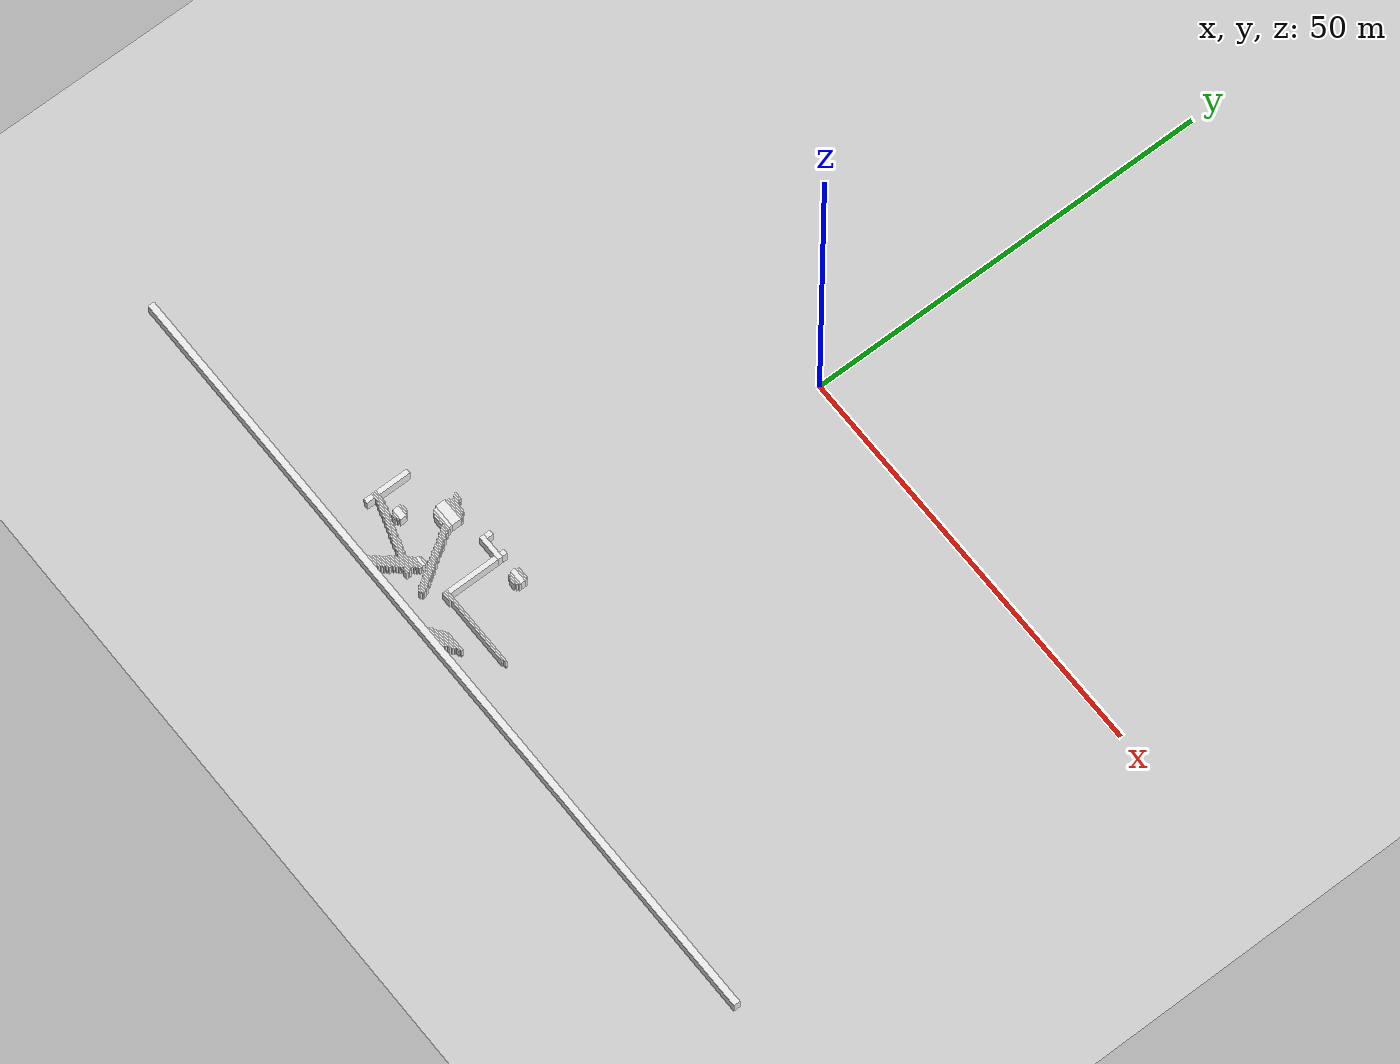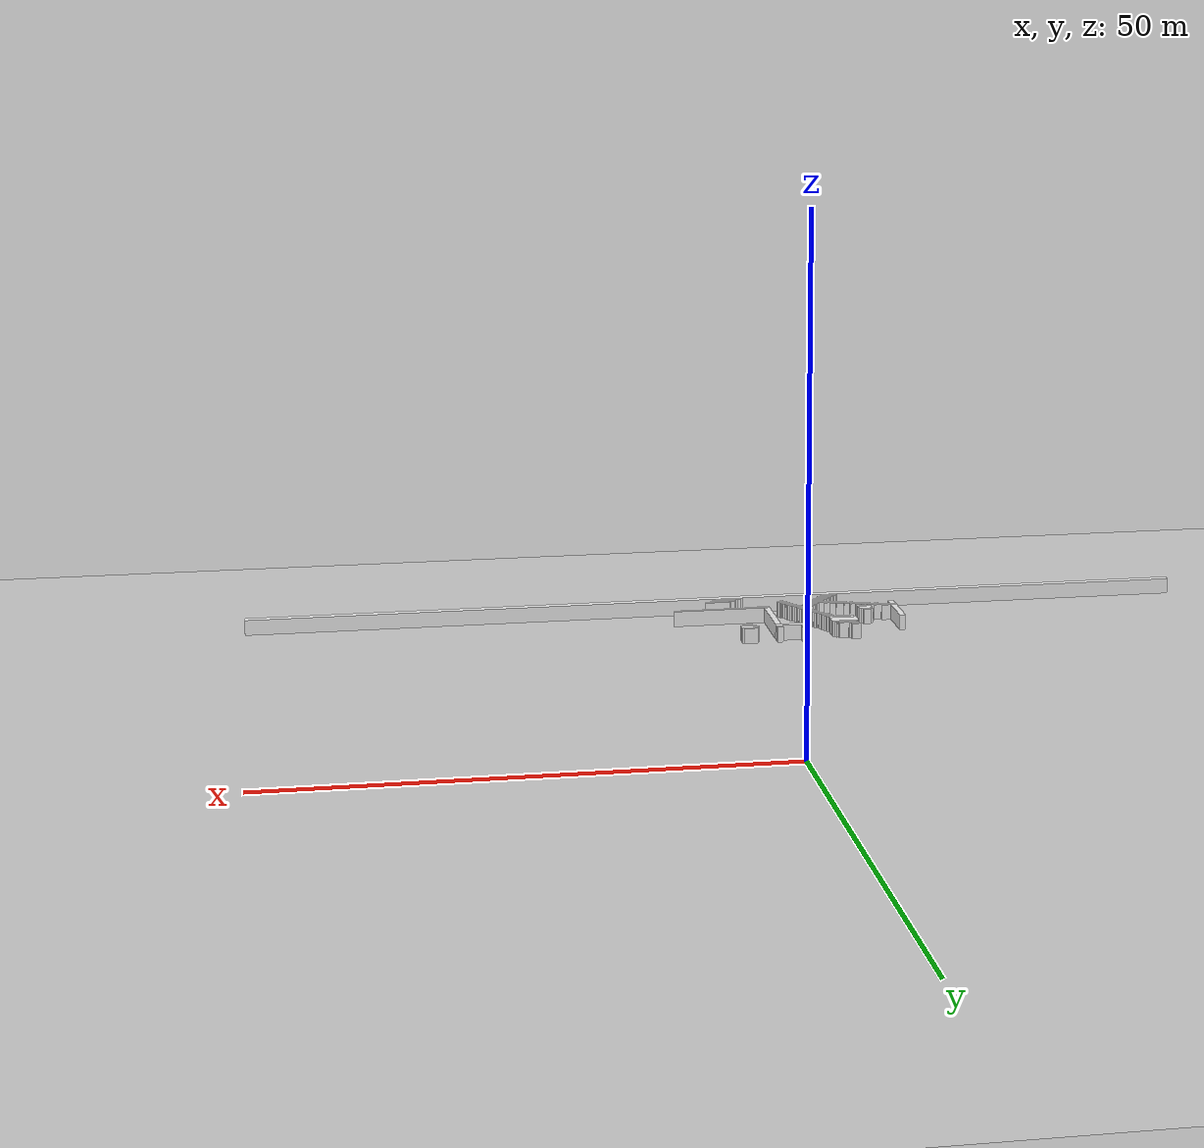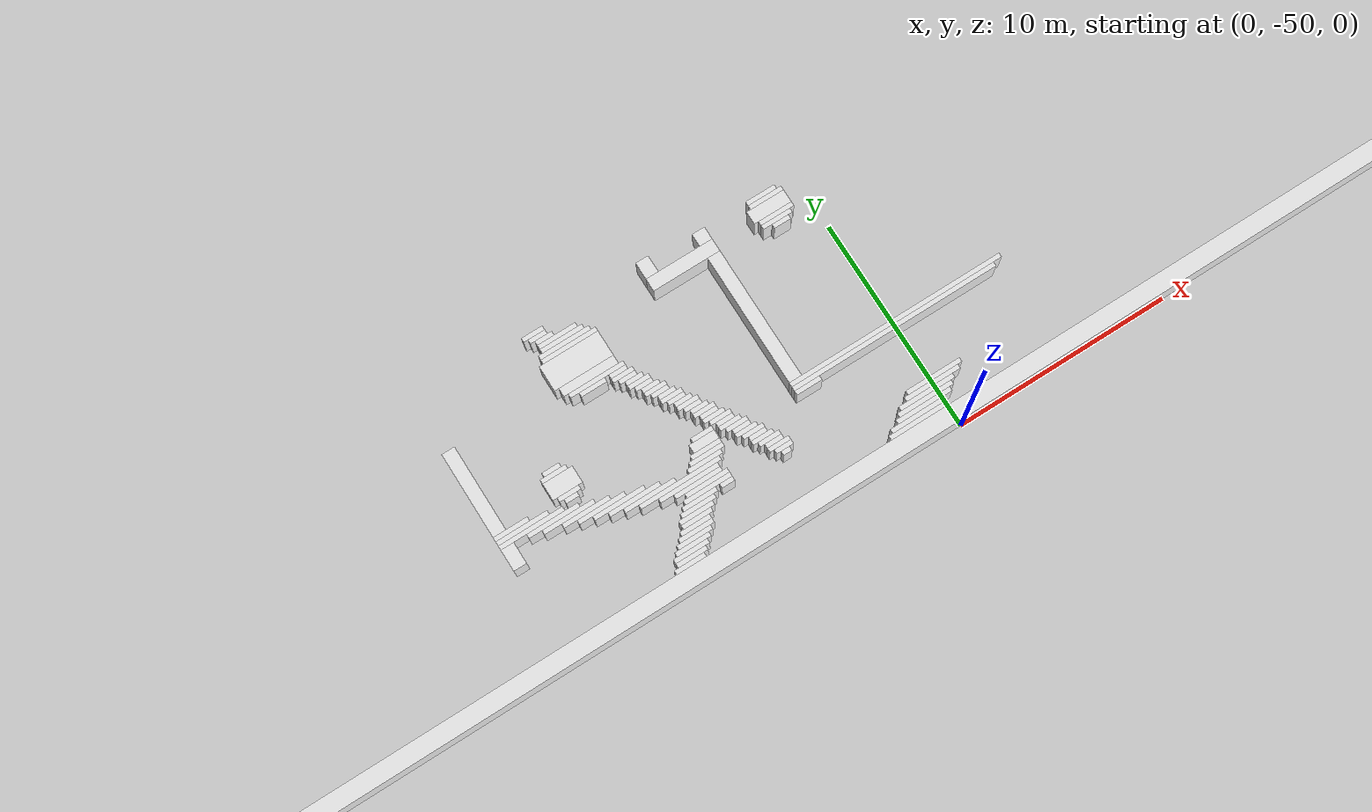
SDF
<sdf version="1.7">
 <world name="default">
  <model name="ground_plane">
   <static>1</static>
   <link name="link">
    <collision name="collision">
     <geometry><plane><normal>0 0 1</normal><size>120 120</size></plane></geometry>
    </collision>
    <visual name="visual">
     <geometry><plane><normal>0 0 1</normal><size>120 120</size></plane></geometry>
     <material>
      <script><uri>file://media/materials/scripts/gazebo.material</uri><name>Gazebo/Grey</name></script>
     </material>
    </visual>
   </link>
  </model>
  <model name="random_complex_02_model">
   <static>1</static>
   <link name="obs_3245">
    <pose>-12.9000 -37.7000 0.8000 0 0 0</pose>
    <collision name="obs_3245_col"><geometry><box><size>1.0000 0.2000 1.6000</size></box></geometry></collision>
    <visual name="obs_3245_vis">
     <geometry><box><size>1.0000 0.2000 1.6000</size></box></geometry>
     <material>
      <script><uri>file://media/materials/scripts/gazebo.material</uri><name>Gazebo/White</name></script>
     </material>
    </visual>
   </link>
   <link name="obs_3246">
    <pose>-1.9000 -37.7000 0.8000 0 0 0</pose>
    <collision name="obs_3246_col"><geometry><box><size>1.4000 0.2000 1.6000</size></box></geometry></collision>
    <visual name="obs_3246_vis">
     <geometry><box><size>1.4000 0.2000 1.6000</size></box></geometry>
     <material>
      <script><uri>file://media/materials/scripts/gazebo.material</uri><name>Gazebo/White</name></script>
     </material>
    </visual>
   </link>
   <link name="obs_3253">
    <pose>-12.8000 -37.9000 0.8000 0 0 0</pose>
    <collision name="obs_3253_col"><geometry><box><size>0.8000 0.2000 1.6000</size></box></geometry></collision>
    <visual name="obs_3253_vis">
     <geometry><box><size>0.8000 0.2000 1.6000</size></box></geometry>
     <material>
      <script><uri>file://media/materials/scripts/gazebo.material</uri><name>Gazebo/White</name></script>
     </material>
    </visual>
   </link>
   <link name="obs_3254">
    <pose>-1.8000 -37.9000 0.8000 0 0 0</pose>
    <collision name="obs_3254_col"><geometry><box><size>1.6000 0.2000 1.6000</size></box></geometry></collision>
    <visual name="obs_3254_vis">
     <geometry><box><size>1.6000 0.2000 1.6000</size></box></geometry>
     <material>
      <script><uri>file://media/materials/scripts/gazebo.material</uri><name>Gazebo/White</name></script>
     </material>
    </visual>
   </link>
   <link name="obs_3257">
    <pose>-7.5000 -37.8000 0.8000 0 0 0</pose>
    <collision name="obs_3257_col"><geometry><box><size>0.6000 0.8000 1.6000</size></box></geometry></collision>
    <visual name="obs_3257_vis">
     <geometry><box><size>0.6000 0.8000 1.6000</size></box></geometry>
     <material>
      <script><uri>file://media/materials/scripts/gazebo.material</uri><name>Gazebo/White</name></script>
     </material>
    </visual>
   </link>
   <link name="obs_3258">
    <pose>-4.9000 -37.9000 0.8000 0 0 0</pose>
    <collision name="obs_3258_col"><geometry><box><size>0.6000 0.6000 1.6000</size></box></geometry></collision>
    <visual name="obs_3258_vis">
     <geometry><box><size>0.6000 0.6000 1.6000</size></box></geometry>
     <material>
      <script><uri>file://media/materials/scripts/gazebo.material</uri><name>Gazebo/White</name></script>
     </material>
    </visual>
   </link>
   <link name="obs_3260">
    <pose>-12.6000 -38.1000 0.8000 0 0 0</pose>
    <collision name="obs_3260_col"><geometry><box><size>0.8000 0.2000 1.6000</size></box></geometry></collision>
    <visual name="obs_3260_vis">
     <geometry><box><size>0.8000 0.2000 1.6000</size></box></geometry>
     <material>
      <script><uri>file://media/materials/scripts/gazebo.material</uri><name>Gazebo/White</name></script>
     </material>
    </visual>
   </link>
   <link name="obs_3264">
    <pose>-12.1000 -38.3000 0.8000 0 0 0</pose>
    <collision name="obs_3264_col"><geometry><box><size>1.8000 0.2000 1.6000</size></box></geometry></collision>
    <visual name="obs_3264_vis">
     <geometry><box><size>1.8000 0.2000 1.6000</size></box></geometry>
     <material>
      <script><uri>file://media/materials/scripts/gazebo.material</uri><name>Gazebo/White</name></script>
     </material>
    </visual>
   </link>
   <link name="obs_3268">
    <pose>-1.9000 -38.3000 0.8000 0 0 0</pose>
    <collision name="obs_3268_col"><geometry><box><size>1.8000 0.6000 1.6000</size></box></geometry></collision>
    <visual name="obs_3268_vis">
     <geometry><box><size>1.8000 0.6000 1.6000</size></box></geometry>
     <material>
      <script><uri>file://media/materials/scripts/gazebo.material</uri><name>Gazebo/White</name></script>
     </material>
    </visual>
   </link>
   <link name="obs_3269">
    <pose>-12.0000 -38.5000 0.8000 0 0 0</pose>
    <collision name="obs_3269_col"><geometry><box><size>2.0000 0.2000 1.6000</size></box></geometry></collision>
    <visual name="obs_3269_vis">
     <geometry><box><size>2.0000 0.2000 1.6000</size></box></geometry>
     <material>
      <script><uri>file://media/materials/scripts/gazebo.material</uri><name>Gazebo/White</name></script>
     </material>
    </visual>
   </link>
   <link name="obs_3274">
    <pose>-6.2000 -38.5000 0.8000 0 0 0</pose>
    <collision name="obs_3274_col"><geometry><box><size>3.2000 0.6000 1.6000</size></box></geometry></collision>
    <visual name="obs_3274_vis">
     <geometry><box><size>3.2000 0.6000 1.6000</size></box></geometry>
     <material>
      <script><uri>file://media/materials/scripts/gazebo.material</uri><name>Gazebo/White</name></script>
     </material>
    </visual>
   </link>
   <link name="obs_3277">
    <pose>-12.0000 -38.7000 0.8000 0 0 0</pose>
    <collision name="obs_3277_col"><geometry><box><size>2.4000 0.2000 1.6000</size></box></geometry></collision>
    <visual name="obs_3277_vis">
     <geometry><box><size>2.4000 0.2000 1.6000</size></box></geometry>
     <material>
      <script><uri>file://media/materials/scripts/gazebo.material</uri><name>Gazebo/White</name></script>
     </material>
    </visual>
   </link>
   <link name="obs_3278">
    <pose>-1.8000 -38.7000 0.8000 0 0 0</pose>
    <collision name="obs_3278_col"><geometry><box><size>1.6000 0.2000 1.6000</size></box></geometry></collision>
    <visual name="obs_3278_vis">
     <geometry><box><size>1.6000 0.2000 1.6000</size></box></geometry>
     <material>
      <script><uri>file://media/materials/scripts/gazebo.material</uri><name>Gazebo/White</name></script>
     </material>
    </visual>
   </link>
   <link name="obs_3284">
    <pose>-11.9000 -38.9000 0.8000 0 0 0</pose>
    <collision name="obs_3284_col"><geometry><box><size>2.6000 0.2000 1.6000</size></box></geometry></collision>
    <visual name="obs_3284_vis">
     <geometry><box><size>2.6000 0.2000 1.6000</size></box></geometry>
     <material>
      <script><uri>file://media/materials/scripts/gazebo.material</uri><name>Gazebo/White</name></script>
     </material>
    </visual>
   </link>
   <link name="obs_3285">
    <pose>-1.9000 -38.9000 0.8000 0 0 0</pose>
    <collision name="obs_3285_col"><geometry><box><size>1.4000 0.2000 1.6000</size></box></geometry></collision>
    <visual name="obs_3285_vis">
     <geometry><box><size>1.4000 0.2000 1.6000</size></box></geometry>
     <material>
      <script><uri>file://media/materials/scripts/gazebo.material</uri><name>Gazebo/White</name></script>
     </material>
    </visual>
   </link>
   <link name="obs_3291">
    <pose>-1.8000 -39.1000 0.8000 0 0 0</pose>
    <collision name="obs_3291_col"><geometry><box><size>0.8000 0.2000 1.6000</size></box></geometry></collision>
    <visual name="obs_3291_vis">
     <geometry><box><size>0.8000 0.2000 1.6000</size></box></geometry>
     <material>
      <script><uri>file://media/materials/scripts/gazebo.material</uri><name>Gazebo/White</name></script>
     </material>
    </visual>
   </link>
   <link name="obs_3311">
    <pose>-12.0000 -39.6000 0.8000 0 0 0</pose>
    <collision name="obs_3311_col"><geometry><box><size>2.8000 1.2000 1.6000</size></box></geometry></collision>
    <visual name="obs_3311_vis">
     <geometry><box><size>2.8000 1.2000 1.6000</size></box></geometry>
     <material>
      <script><uri>file://media/materials/scripts/gazebo.material</uri><name>Gazebo/White</name></script>
     </material>
    </visual>
   </link>
   <link name="obs_3323">
    <pose>-11.9000 -40.4000 0.8000 0 0 0</pose>
    <collision name="obs_3323_col"><geometry><box><size>2.6000 0.4000 1.6000</size></box></geometry></collision>
    <visual name="obs_3323_vis">
     <geometry><box><size>2.6000 0.4000 1.6000</size></box></geometry>
     <material>
      <script><uri>file://media/materials/scripts/gazebo.material</uri><name>Gazebo/White</name></script>
     </material>
    </visual>
   </link>
   <link name="obs_3331">
    <pose>-11.7000 -40.7000 0.8000 0 0 0</pose>
    <collision name="obs_3331_col"><geometry><box><size>2.6000 0.2000 1.6000</size></box></geometry></collision>
    <visual name="obs_3331_vis">
     <geometry><box><size>2.6000 0.2000 1.6000</size></box></geometry>
     <material>
      <script><uri>file://media/materials/scripts/gazebo.material</uri><name>Gazebo/White</name></script>
     </material>
    </visual>
   </link>
   <link name="obs_3336">
    <pose>-12.0000 -40.9000 0.8000 0 0 0</pose>
    <collision name="obs_3336_col"><geometry><box><size>1.2000 0.2000 1.6000</size></box></geometry></collision>
    <visual name="obs_3336_vis">
     <geometry><box><size>1.2000 0.2000 1.6000</size></box></geometry>
     <material>
      <script><uri>file://media/materials/scripts/gazebo.material</uri><name>Gazebo/White</name></script>
     </material>
    </visual>
   </link>
   <link name="obs_3337">
    <pose>-10.8000 -40.9000 0.8000 0 0 0</pose>
    <collision name="obs_3337_col"><geometry><box><size>0.8000 0.2000 1.6000</size></box></geometry></collision>
    <visual name="obs_3337_vis">
     <geometry><box><size>0.8000 0.2000 1.6000</size></box></geometry>
     <material>
      <script><uri>file://media/materials/scripts/gazebo.material</uri><name>Gazebo/White</name></script>
     </material>
    </visual>
   </link>
   <link name="obs_3346">
    <pose>-10.7000 -41.1000 0.8000 0 0 0</pose>
    <collision name="obs_3346_col"><geometry><box><size>1.0000 0.2000 1.6000</size></box></geometry></collision>
    <visual name="obs_3346_vis">
     <geometry><box><size>1.0000 0.2000 1.6000</size></box></geometry>
     <material>
      <script><uri>file://media/materials/scripts/gazebo.material</uri><name>Gazebo/White</name></script>
     </material>
    </visual>
   </link>
   <link name="obs_3354">
    <pose>-10.6000 -41.3000 0.8000 0 0 0</pose>
    <collision name="obs_3354_col"><geometry><box><size>0.8000 0.2000 1.6000</size></box></geometry></collision>
    <visual name="obs_3354_vis">
     <geometry><box><size>0.8000 0.2000 1.6000</size></box></geometry>
     <material>
      <script><uri>file://media/materials/scripts/gazebo.material</uri><name>Gazebo/White</name></script>
     </material>
    </visual>
   </link>
   <link name="obs_3361">
    <pose>-10.4000 -41.5000 0.8000 0 0 0</pose>
    <collision name="obs_3361_col"><geometry><box><size>0.8000 0.2000 1.6000</size></box></geometry></collision>
    <visual name="obs_3361_vis">
     <geometry><box><size>0.8000 0.2000 1.6000</size></box></geometry>
     <material>
      <script><uri>file://media/materials/scripts/gazebo.material</uri><name>Gazebo/White</name></script>
     </material>
    </visual>
   </link>
   <link name="obs_3371">
    <pose>-10.3000 -41.7000 0.8000 0 0 0</pose>
    <collision name="obs_3371_col"><geometry><box><size>1.0000 0.2000 1.6000</size></box></geometry></collision>
    <visual name="obs_3371_vis">
     <geometry><box><size>1.0000 0.2000 1.6000</size></box></geometry>
     <material>
      <script><uri>file://media/materials/scripts/gazebo.material</uri><name>Gazebo/White</name></script>
     </material>
    </visual>
   </link>
   <link name="obs_3380">
    <pose>-10.2000 -41.9000 0.8000 0 0 0</pose>
    <collision name="obs_3380_col"><geometry><box><size>0.8000 0.2000 1.6000</size></box></geometry></collision>
    <visual name="obs_3380_vis">
     <geometry><box><size>0.8000 0.2000 1.6000</size></box></geometry>
     <material>
      <script><uri>file://media/materials/scripts/gazebo.material</uri><name>Gazebo/White</name></script>
     </material>
    </visual>
   </link>
   <link name="obs_3390">
    <pose>-10.0000 -42.1000 0.8000 0 0 0</pose>
    <collision name="obs_3390_col"><geometry><box><size>0.8000 0.2000 1.6000</size></box></geometry></collision>
    <visual name="obs_3390_vis">
     <geometry><box><size>0.8000 0.2000 1.6000</size></box></geometry>
     <material>
      <script><uri>file://media/materials/scripts/gazebo.material</uri><name>Gazebo/White</name></script>
     </material>
    </visual>
   </link>
   <link name="obs_3397">
    <pose>-9.9000 -42.3000 0.8000 0 0 0</pose>
    <collision name="obs_3397_col"><geometry><box><size>1.0000 0.2000 1.6000</size></box></geometry></collision>
    <visual name="obs_3397_vis">
     <geometry><box><size>1.0000 0.2000 1.6000</size></box></geometry>
     <material>
      <script><uri>file://media/materials/scripts/gazebo.material</uri><name>Gazebo/White</name></script>
     </material>
    </visual>
   </link>
   <link name="obs_3404">
    <pose>-9.8000 -42.5000 0.8000 0 0 0</pose>
    <collision name="obs_3404_col"><geometry><box><size>0.8000 0.2000 1.6000</size></box></geometry></collision>
    <visual name="obs_3404_vis">
     <geometry><box><size>0.8000 0.2000 1.6000</size></box></geometry>
     <material>
      <script><uri>file://media/materials/scripts/gazebo.material</uri><name>Gazebo/White</name></script>
     </material>
    </visual>
   </link>
   <link name="obs_3408">
    <pose>-9.6000 -42.7000 0.8000 0 0 0</pose>
    <collision name="obs_3408_col"><geometry><box><size>0.8000 0.2000 1.6000</size></box></geometry></collision>
    <visual name="obs_3408_vis">
     <geometry><box><size>0.8000 0.2000 1.6000</size></box></geometry>
     <material>
      <script><uri>file://media/materials/scripts/gazebo.material</uri><name>Gazebo/White</name></script>
     </material>
    </visual>
   </link>
   <link name="obs_3416">
    <pose>-15.2000 -42.9000 0.8000 0 0 0</pose>
    <collision name="obs_3416_col"><geometry><box><size>0.8000 0.2000 1.6000</size></box></geometry></collision>
    <visual name="obs_3416_vis">
     <geometry><box><size>0.8000 0.2000 1.6000</size></box></geometry>
     <material>
      <script><uri>file://media/materials/scripts/gazebo.material</uri><name>Gazebo/White</name></script>
     </material>
    </visual>
   </link>
   <link name="obs_3417">
    <pose>-9.5000 -42.9000 0.8000 0 0 0</pose>
    <collision name="obs_3417_col"><geometry><box><size>1.0000 0.2000 1.6000</size></box></geometry></collision>
    <visual name="obs_3417_vis">
     <geometry><box><size>1.0000 0.2000 1.6000</size></box></geometry>
     <material>
      <script><uri>file://media/materials/scripts/gazebo.material</uri><name>Gazebo/White</name></script>
     </material>
    </visual>
   </link>
   <link name="obs_3423">
    <pose>-15.2000 -43.1000 0.8000 0 0 0</pose>
    <collision name="obs_3423_col"><geometry><box><size>1.2000 0.2000 1.6000</size></box></geometry></collision>
    <visual name="obs_3423_vis">
     <geometry><box><size>1.2000 0.2000 1.6000</size></box></geometry>
     <material>
      <script><uri>file://media/materials/scripts/gazebo.material</uri><name>Gazebo/White</name></script>
     </material>
    </visual>
   </link>
   <link name="obs_3424">
    <pose>-9.4000 -43.1000 0.8000 0 0 0</pose>
    <collision name="obs_3424_col"><geometry><box><size>0.8000 0.2000 1.6000</size></box></geometry></collision>
    <visual name="obs_3424_vis">
     <geometry><box><size>0.8000 0.2000 1.6000</size></box></geometry>
     <material>
      <script><uri>file://media/materials/scripts/gazebo.material</uri><name>Gazebo/White</name></script>
     </material>
    </visual>
   </link>
   <link name="obs_3432">
    <pose>-9.2000 -43.3000 0.8000 0 0 0</pose>
    <collision name="obs_3432_col"><geometry><box><size>0.8000 0.2000 1.6000</size></box></geometry></collision>
    <visual name="obs_3432_vis">
     <geometry><box><size>0.8000 0.2000 1.6000</size></box></geometry>
     <material>
      <script><uri>file://media/materials/scripts/gazebo.material</uri><name>Gazebo/White</name></script>
     </material>
    </visual>
   </link>
   <link name="obs_3437">
    <pose>-9.1000 -43.5000 0.8000 0 0 0</pose>
    <collision name="obs_3437_col"><geometry><box><size>1.0000 0.2000 1.6000</size></box></geometry></collision>
    <visual name="obs_3437_vis">
     <geometry><box><size>1.0000 0.2000 1.6000</size></box></geometry>
     <material>
      <script><uri>file://media/materials/scripts/gazebo.material</uri><name>Gazebo/White</name></script>
     </material>
    </visual>
   </link>
   <link name="obs_3443">
    <pose>-9.0000 -43.7000 0.8000 0 0 0</pose>
    <collision name="obs_3443_col"><geometry><box><size>0.8000 0.2000 1.6000</size></box></geometry></collision>
    <visual name="obs_3443_vis">
     <geometry><box><size>0.8000 0.2000 1.6000</size></box></geometry>
     <material>
      <script><uri>file://media/materials/scripts/gazebo.material</uri><name>Gazebo/White</name></script>
     </material>
    </visual>
   </link>
   <link name="obs_3448">
    <pose>-18.3000 -42.0000 0.8000 0 0 0</pose>
    <collision name="obs_3448_col"><geometry><box><size>0.6000 4.0000 1.6000</size></box></geometry></collision>
    <visual name="obs_3448_vis">
     <geometry><box><size>0.6000 4.0000 1.6000</size></box></geometry>
     <material>
      <script><uri>file://media/materials/scripts/gazebo.material</uri><name>Gazebo/White</name></script>
     </material>
    </visual>
   </link>
   <link name="obs_3451">
    <pose>-15.1000 -43.6000 0.8000 0 0 0</pose>
    <collision name="obs_3451_col"><geometry><box><size>1.4000 0.8000 1.6000</size></box></geometry></collision>
    <visual name="obs_3451_vis">
     <geometry><box><size>1.4000 0.8000 1.6000</size></box></geometry>
     <material>
      <script><uri>file://media/materials/scripts/gazebo.material</uri><name>Gazebo/White</name></script>
     </material>
    </visual>
   </link>
   <link name="obs_3454">
    <pose>-8.8000 -43.9000 0.8000 0 0 0</pose>
    <collision name="obs_3454_col"><geometry><box><size>0.8000 0.2000 1.6000</size></box></geometry></collision>
    <visual name="obs_3454_vis">
     <geometry><box><size>0.8000 0.2000 1.6000</size></box></geometry>
     <material>
      <script><uri>file://media/materials/scripts/gazebo.material</uri><name>Gazebo/White</name></script>
     </material>
    </visual>
   </link>
   <link name="obs_3462">
    <pose>-17.8000 -44.1000 0.8000 0 0 0</pose>
    <collision name="obs_3462_col"><geometry><box><size>1.6000 0.2000 1.6000</size></box></geometry></collision>
    <visual name="obs_3462_vis">
     <geometry><box><size>1.6000 0.2000 1.6000</size></box></geometry>
     <material>
      <script><uri>file://media/materials/scripts/gazebo.material</uri><name>Gazebo/White</name></script>
     </material>
    </visual>
   </link>
   <link name="obs_3463">
    <pose>-15.1000 -44.1000 0.8000 0 0 0</pose>
    <collision name="obs_3463_col"><geometry><box><size>1.0000 0.2000 1.6000</size></box></geometry></collision>
    <visual name="obs_3463_vis">
     <geometry><box><size>1.0000 0.2000 1.6000</size></box></geometry>
     <material>
      <script><uri>file://media/materials/scripts/gazebo.material</uri><name>Gazebo/White</name></script>
     </material>
    </visual>
   </link>
   <link name="obs_3464">
    <pose>-8.7000 -44.1000 0.8000 0 0 0</pose>
    <collision name="obs_3464_col"><geometry><box><size>1.0000 0.2000 1.6000</size></box></geometry></collision>
    <visual name="obs_3464_vis">
     <geometry><box><size>1.0000 0.2000 1.6000</size></box></geometry>
     <material>
      <script><uri>file://media/materials/scripts/gazebo.material</uri><name>Gazebo/White</name></script>
     </material>
    </visual>
   </link>
   <link name="obs_3472">
    <pose>-17.4000 -44.3000 0.8000 0 0 0</pose>
    <collision name="obs_3472_col"><geometry><box><size>2.4000 0.2000 1.6000</size></box></geometry></collision>
    <visual name="obs_3472_vis">
     <geometry><box><size>2.4000 0.2000 1.6000</size></box></geometry>
     <material>
      <script><uri>file://media/materials/scripts/gazebo.material</uri><name>Gazebo/White</name></script>
     </material>
    </visual>
   </link>
   <link name="obs_3473">
    <pose>-15.1000 -44.3000 0.8000 0 0 0</pose>
    <collision name="obs_3473_col"><geometry><box><size>0.6000 0.2000 1.6000</size></box></geometry></collision>
    <visual name="obs_3473_vis">
     <geometry><box><size>0.6000 0.2000 1.6000</size></box></geometry>
     <material>
      <script><uri>file://media/materials/scripts/gazebo.material</uri><name>Gazebo/White</name></script>
     </material>
    </visual>
   </link>
   <link name="obs_3474">
    <pose>-8.6000 -44.3000 0.8000 0 0 0</pose>
    <collision name="obs_3474_col"><geometry><box><size>0.8000 0.2000 1.6000</size></box></geometry></collision>
    <visual name="obs_3474_vis">
     <geometry><box><size>0.8000 0.2000 1.6000</size></box></geometry>
     <material>
      <script><uri>file://media/materials/scripts/gazebo.material</uri><name>Gazebo/White</name></script>
     </material>
    </visual>
   </link>
   <link name="obs_3479">
    <pose>-17.1000 -44.5000 0.8000 0 0 0</pose>
    <collision name="obs_3479_col"><geometry><box><size>3.0000 0.2000 1.6000</size></box></geometry></collision>
    <visual name="obs_3479_vis">
     <geometry><box><size>3.0000 0.2000 1.6000</size></box></geometry>
     <material>
      <script><uri>file://media/materials/scripts/gazebo.material</uri><name>Gazebo/White</name></script>
     </material>
    </visual>
   </link>
   <link name="obs_3480">
    <pose>-8.5000 -44.5000 0.8000 0 0 0</pose>
    <collision name="obs_3480_col"><geometry><box><size>1.0000 0.2000 1.6000</size></box></geometry></collision>
    <visual name="obs_3480_vis">
     <geometry><box><size>1.0000 0.2000 1.6000</size></box></geometry>
     <material>
      <script><uri>file://media/materials/scripts/gazebo.material</uri><name>Gazebo/White</name></script>
     </material>
    </visual>
   </link>
   <link name="obs_3486">
    <pose>-16.2000 -44.7000 0.8000 0 0 0</pose>
    <collision name="obs_3486_col"><geometry><box><size>2.4000 0.2000 1.6000</size></box></geometry></collision>
    <visual name="obs_3486_vis">
     <geometry><box><size>2.4000 0.2000 1.6000</size></box></geometry>
     <material>
      <script><uri>file://media/materials/scripts/gazebo.material</uri><name>Gazebo/White</name></script>
     </material>
    </visual>
   </link>
   <link name="obs_3487">
    <pose>-8.3000 -44.7000 0.8000 0 0 0</pose>
    <collision name="obs_3487_col"><geometry><box><size>1.0000 0.2000 1.6000</size></box></geometry></collision>
    <visual name="obs_3487_vis">
     <geometry><box><size>1.0000 0.2000 1.6000</size></box></geometry>
     <material>
      <script><uri>file://media/materials/scripts/gazebo.material</uri><name>Gazebo/White</name></script>
     </material>
    </visual>
   </link>
   <link name="obs_3490">
    <pose>-4.9000 -41.9000 0.8000 0 0 0</pose>
    <collision name="obs_3490_col"><geometry><box><size>0.6000 6.2000 1.6000</size></box></geometry></collision>
    <visual name="obs_3490_vis">
     <geometry><box><size>0.6000 6.2000 1.6000</size></box></geometry>
     <material>
      <script><uri>file://media/materials/scripts/gazebo.material</uri><name>Gazebo/White</name></script>
     </material>
    </visual>
   </link>
   <link name="obs_3495">
    <pose>-15.6000 -44.9000 0.8000 0 0 0</pose>
    <collision name="obs_3495_col"><geometry><box><size>2.4000 0.2000 1.6000</size></box></geometry></collision>
    <visual name="obs_3495_vis">
     <geometry><box><size>2.4000 0.2000 1.6000</size></box></geometry>
     <material>
      <script><uri>file://media/materials/scripts/gazebo.material</uri><name>Gazebo/White</name></script>
     </material>
    </visual>
   </link>
   <link name="obs_3496">
    <pose>-9.3000 -44.9000 0.8000 0 0 0</pose>
    <collision name="obs_3496_col"><geometry><box><size>1.0000 0.2000 1.6000</size></box></geometry></collision>
    <visual name="obs_3496_vis">
     <geometry><box><size>1.0000 0.2000 1.6000</size></box></geometry>
     <material>
      <script><uri>file://media/materials/scripts/gazebo.material</uri><name>Gazebo/White</name></script>
     </material>
    </visual>
   </link>
   <link name="obs_3497">
    <pose>-8.2000 -44.9000 0.8000 0 0 0</pose>
    <collision name="obs_3497_col"><geometry><box><size>0.8000 0.2000 1.6000</size></box></geometry></collision>
    <visual name="obs_3497_vis">
     <geometry><box><size>0.8000 0.2000 1.6000</size></box></geometry>
     <material>
      <script><uri>file://media/materials/scripts/gazebo.material</uri><name>Gazebo/White</name></script>
     </material>
    </visual>
   </link>
   <link name="obs_3505">
    <pose>-14.9000 -45.1000 0.8000 0 0 0</pose>
    <collision name="obs_3505_col"><geometry><box><size>2.2000 0.2000 1.6000</size></box></geometry></collision>
    <visual name="obs_3505_vis">
     <geometry><box><size>2.2000 0.2000 1.6000</size></box></geometry>
     <material>
      <script><uri>file://media/materials/scripts/gazebo.material</uri><name>Gazebo/White</name></script>
     </material>
    </visual>
   </link>
   <link name="obs_3506">
    <pose>-8.1000 -45.1000 0.8000 0 0 0</pose>
    <collision name="obs_3506_col"><geometry><box><size>1.0000 0.2000 1.6000</size></box></geometry></collision>
    <visual name="obs_3506_vis">
     <geometry><box><size>1.0000 0.2000 1.6000</size></box></geometry>
     <material>
      <script><uri>file://media/materials/scripts/gazebo.material</uri><name>Gazebo/White</name></script>
     </material>
    </visual>
   </link>
   <link name="obs_3507">
    <pose>-0.1000 -45.1000 0.8000 0 0 0</pose>
    <collision name="obs_3507_col"><geometry><box><size>10.2000 0.2000 1.6000</size></box></geometry></collision>
    <visual name="obs_3507_vis">
     <geometry><box><size>10.2000 0.2000 1.6000</size></box></geometry>
     <material>
      <script><uri>file://media/materials/scripts/gazebo.material</uri><name>Gazebo/White</name></script>
     </material>
    </visual>
   </link>
   <link name="obs_3512">
    <pose>-9.4000 -45.2000 0.8000 0 0 0</pose>
    <collision name="obs_3512_col"><geometry><box><size>1.2000 0.4000 1.6000</size></box></geometry></collision>
    <visual name="obs_3512_vis">
     <geometry><box><size>1.2000 0.4000 1.6000</size></box></geometry>
     <material>
      <script><uri>file://media/materials/scripts/gazebo.material</uri><name>Gazebo/White</name></script>
     </material>
    </visual>
   </link>
   <link name="obs_3515">
    <pose>-14.3000 -45.3000 0.8000 0 0 0</pose>
    <collision name="obs_3515_col"><geometry><box><size>2.2000 0.2000 1.6000</size></box></geometry></collision>
    <visual name="obs_3515_vis">
     <geometry><box><size>2.2000 0.2000 1.6000</size></box></geometry>
     <material>
      <script><uri>file://media/materials/scripts/gazebo.material</uri><name>Gazebo/White</name></script>
     </material>
    </visual>
   </link>
   <link name="obs_3516">
    <pose>-7.9000 -45.3000 0.8000 0 0 0</pose>
    <collision name="obs_3516_col"><geometry><box><size>1.0000 0.2000 1.6000</size></box></geometry></collision>
    <visual name="obs_3516_vis">
     <geometry><box><size>1.0000 0.2000 1.6000</size></box></geometry>
     <material>
      <script><uri>file://media/materials/scripts/gazebo.material</uri><name>Gazebo/White</name></script>
     </material>
    </visual>
   </link>
   <link name="obs_3517">
    <pose>-0.3000 -45.3000 0.8000 0 0 0</pose>
    <collision name="obs_3517_col"><geometry><box><size>9.8000 0.2000 1.6000</size></box></geometry></collision>
    <visual name="obs_3517_vis">
     <geometry><box><size>9.8000 0.2000 1.6000</size></box></geometry>
     <material>
      <script><uri>file://media/materials/scripts/gazebo.material</uri><name>Gazebo/White</name></script>
     </material>
    </visual>
   </link>
   <link name="obs_3523">
    <pose>-18.3000 -45.1000 0.8000 0 0 0</pose>
    <collision name="obs_3523_col"><geometry><box><size>0.6000 1.0000 1.6000</size></box></geometry></collision>
    <visual name="obs_3523_vis">
     <geometry><box><size>0.6000 1.0000 1.6000</size></box></geometry>
     <material>
      <script><uri>file://media/materials/scripts/gazebo.material</uri><name>Gazebo/White</name></script>
     </material>
    </visual>
   </link>
   <link name="obs_3528">
    <pose>-13.6000 -45.5000 0.8000 0 0 0</pose>
    <collision name="obs_3528_col"><geometry><box><size>2.4000 0.2000 1.6000</size></box></geometry></collision>
    <visual name="obs_3528_vis">
     <geometry><box><size>2.4000 0.2000 1.6000</size></box></geometry>
     <material>
      <script><uri>file://media/materials/scripts/gazebo.material</uri><name>Gazebo/White</name></script>
     </material>
    </visual>
   </link>
   <link name="obs_3529">
    <pose>-9.5000 -45.5000 0.8000 0 0 0</pose>
    <collision name="obs_3529_col"><geometry><box><size>1.4000 0.2000 1.6000</size></box></geometry></collision>
    <visual name="obs_3529_vis">
     <geometry><box><size>1.4000 0.2000 1.6000</size></box></geometry>
     <material>
      <script><uri>file://media/materials/scripts/gazebo.material</uri><name>Gazebo/White</name></script>
     </material>
    </visual>
   </link>
   <link name="obs_3530">
    <pose>-7.8000 -45.5000 0.8000 0 0 0</pose>
    <collision name="obs_3530_col"><geometry><box><size>0.8000 0.2000 1.6000</size></box></geometry></collision>
    <visual name="obs_3530_vis">
     <geometry><box><size>0.8000 0.2000 1.6000</size></box></geometry>
     <material>
      <script><uri>file://media/materials/scripts/gazebo.material</uri><name>Gazebo/White</name></script>
     </material>
    </visual>
   </link>
   <link name="obs_3531">
    <pose>-4.6000 -45.5000 0.8000 0 0 0</pose>
    <collision name="obs_3531_col"><geometry><box><size>1.2000 0.2000 1.6000</size></box></geometry></collision>
    <visual name="obs_3531_vis">
     <geometry><box><size>1.2000 0.2000 1.6000</size></box></geometry>
     <material>
      <script><uri>file://media/materials/scripts/gazebo.material</uri><name>Gazebo/White</name></script>
     </material>
    </visual>
   </link>
   <link name="obs_3538">
    <pose>-13.0000 -45.7000 0.8000 0 0 0</pose>
    <collision name="obs_3538_col"><geometry><box><size>2.4000 0.2000 1.6000</size></box></geometry></collision>
    <visual name="obs_3538_vis">
     <geometry><box><size>2.4000 0.2000 1.6000</size></box></geometry>
     <material>
      <script><uri>file://media/materials/scripts/gazebo.material</uri><name>Gazebo/White</name></script>
     </material>
    </visual>
   </link>
   <link name="obs_3539">
    <pose>-9.6000 -45.7000 0.8000 0 0 0</pose>
    <collision name="obs_3539_col"><geometry><box><size>1.6000 0.2000 1.6000</size></box></geometry></collision>
    <visual name="obs_3539_vis">
     <geometry><box><size>1.6000 0.2000 1.6000</size></box></geometry>
     <material>
      <script><uri>file://media/materials/scripts/gazebo.material</uri><name>Gazebo/White</name></script>
     </material>
    </visual>
   </link>
   <link name="obs_3540">
    <pose>-7.7000 -45.7000 0.8000 0 0 0</pose>
    <collision name="obs_3540_col"><geometry><box><size>1.0000 0.2000 1.6000</size></box></geometry></collision>
    <visual name="obs_3540_vis">
     <geometry><box><size>1.0000 0.2000 1.6000</size></box></geometry>
     <material>
      <script><uri>file://media/materials/scripts/gazebo.material</uri><name>Gazebo/White</name></script>
     </material>
    </visual>
   </link>
   <link name="obs_3547">
    <pose>-12.4000 -45.9000 0.8000 0 0 0</pose>
    <collision name="obs_3547_col"><geometry><box><size>2.4000 0.2000 1.6000</size></box></geometry></collision>
    <visual name="obs_3547_vis">
     <geometry><box><size>2.4000 0.2000 1.6000</size></box></geometry>
     <material>
      <script><uri>file://media/materials/scripts/gazebo.material</uri><name>Gazebo/White</name></script>
     </material>
    </visual>
   </link>
   <link name="obs_3548">
    <pose>-9.8000 -45.9000 0.8000 0 0 0</pose>
    <collision name="obs_3548_col"><geometry><box><size>1.6000 0.2000 1.6000</size></box></geometry></collision>
    <visual name="obs_3548_vis">
     <geometry><box><size>1.6000 0.2000 1.6000</size></box></geometry>
     <material>
      <script><uri>file://media/materials/scripts/gazebo.material</uri><name>Gazebo/White</name></script>
     </material>
    </visual>
   </link>
   <link name="obs_3549">
    <pose>-7.5000 -45.9000 0.8000 0 0 0</pose>
    <collision name="obs_3549_col"><geometry><box><size>1.0000 0.2000 1.6000</size></box></geometry></collision>
    <visual name="obs_3549_vis">
     <geometry><box><size>1.0000 0.2000 1.6000</size></box></geometry>
     <material>
      <script><uri>file://media/materials/scripts/gazebo.material</uri><name>Gazebo/White</name></script>
     </material>
    </visual>
   </link>
   <link name="obs_3554">
    <pose>-11.1000 -46.1000 0.8000 0 0 0</pose>
    <collision name="obs_3554_col"><geometry><box><size>3.8000 0.2000 1.6000</size></box></geometry></collision>
    <visual name="obs_3554_vis">
     <geometry><box><size>3.8000 0.2000 1.6000</size></box></geometry>
     <material>
      <script><uri>file://media/materials/scripts/gazebo.material</uri><name>Gazebo/White</name></script>
     </material>
    </visual>
   </link>
   <link name="obs_3555">
    <pose>-7.4000 -46.1000 0.8000 0 0 0</pose>
    <collision name="obs_3555_col"><geometry><box><size>0.8000 0.2000 1.6000</size></box></geometry></collision>
    <visual name="obs_3555_vis">
     <geometry><box><size>0.8000 0.2000 1.6000</size></box></geometry>
     <material>
      <script><uri>file://media/materials/scripts/gazebo.material</uri><name>Gazebo/White</name></script>
     </material>
    </visual>
   </link>
   <link name="obs_3564">
    <pose>-10.8000 -46.3000 0.8000 0 0 0</pose>
    <collision name="obs_3564_col"><geometry><box><size>2.8000 0.2000 1.6000</size></box></geometry></collision>
    <visual name="obs_3564_vis">
     <geometry><box><size>2.8000 0.2000 1.6000</size></box></geometry>
     <material>
      <script><uri>file://media/materials/scripts/gazebo.material</uri><name>Gazebo/White</name></script>
     </material>
    </visual>
   </link>
   <link name="obs_3565">
    <pose>-7.3000 -46.3000 0.8000 0 0 0</pose>
    <collision name="obs_3565_col"><geometry><box><size>1.0000 0.2000 1.6000</size></box></geometry></collision>
    <visual name="obs_3565_vis">
     <geometry><box><size>1.0000 0.2000 1.6000</size></box></geometry>
     <material>
      <script><uri>file://media/materials/scripts/gazebo.material</uri><name>Gazebo/White</name></script>
     </material>
    </visual>
   </link>
   <link name="obs_3570">
    <pose>-10.5000 -46.5000 0.8000 0 0 0</pose>
    <collision name="obs_3570_col"><geometry><box><size>2.2000 0.2000 1.6000</size></box></geometry></collision>
    <visual name="obs_3570_vis">
     <geometry><box><size>2.2000 0.2000 1.6000</size></box></geometry>
     <material>
      <script><uri>file://media/materials/scripts/gazebo.material</uri><name>Gazebo/White</name></script>
     </material>
    </visual>
   </link>
   <link name="obs_3571">
    <pose>-7.1000 -46.5000 0.8000 0 0 0</pose>
    <collision name="obs_3571_col"><geometry><box><size>1.0000 0.2000 1.6000</size></box></geometry></collision>
    <visual name="obs_3571_vis">
     <geometry><box><size>1.0000 0.2000 1.6000</size></box></geometry>
     <material>
      <script><uri>file://media/materials/scripts/gazebo.material</uri><name>Gazebo/White</name></script>
     </material>
    </visual>
   </link>
   <link name="obs_3579">
    <pose>-10.2000 -46.7000 0.8000 0 0 0</pose>
    <collision name="obs_3579_col"><geometry><box><size>2.0000 0.2000 1.6000</size></box></geometry></collision>
    <visual name="obs_3579_vis">
     <geometry><box><size>2.0000 0.2000 1.6000</size></box></geometry>
     <material>
      <script><uri>file://media/materials/scripts/gazebo.material</uri><name>Gazebo/White</name></script>
     </material>
    </visual>
   </link>
   <link name="obs_3580">
    <pose>-7.0000 -46.7000 0.8000 0 0 0</pose>
    <collision name="obs_3580_col"><geometry><box><size>0.8000 0.2000 1.6000</size></box></geometry></collision>
    <visual name="obs_3580_vis">
     <geometry><box><size>0.8000 0.2000 1.6000</size></box></geometry>
     <material>
      <script><uri>file://media/materials/scripts/gazebo.material</uri><name>Gazebo/White</name></script>
     </material>
    </visual>
   </link>
   <link name="obs_3587">
    <pose>-10.3000 -46.9000 0.8000 0 0 0</pose>
    <collision name="obs_3587_col"><geometry><box><size>2.2000 0.2000 1.6000</size></box></geometry></collision>
    <visual name="obs_3587_vis">
     <geometry><box><size>2.2000 0.2000 1.6000</size></box></geometry>
     <material>
      <script><uri>file://media/materials/scripts/gazebo.material</uri><name>Gazebo/White</name></script>
     </material>
    </visual>
   </link>
   <link name="obs_3588">
    <pose>-6.9000 -46.9000 0.8000 0 0 0</pose>
    <collision name="obs_3588_col"><geometry><box><size>1.0000 0.2000 1.6000</size></box></geometry></collision>
    <visual name="obs_3588_vis">
     <geometry><box><size>1.0000 0.2000 1.6000</size></box></geometry>
     <material>
      <script><uri>file://media/materials/scripts/gazebo.material</uri><name>Gazebo/White</name></script>
     </material>
    </visual>
   </link>
   <link name="obs_3597">
    <pose>-10.8000 -47.1000 0.8000 0 0 0</pose>
    <collision name="obs_3597_col"><geometry><box><size>1.6000 0.2000 1.6000</size></box></geometry></collision>
    <visual name="obs_3597_vis">
     <geometry><box><size>1.6000 0.2000 1.6000</size></box></geometry>
     <material>
      <script><uri>file://media/materials/scripts/gazebo.material</uri><name>Gazebo/White</name></script>
     </material>
    </visual>
   </link>
   <link name="obs_3598">
    <pose>-9.5000 -47.1000 0.8000 0 0 0</pose>
    <collision name="obs_3598_col"><geometry><box><size>0.6000 0.2000 1.6000</size></box></geometry></collision>
    <visual name="obs_3598_vis">
     <geometry><box><size>0.6000 0.2000 1.6000</size></box></geometry>
     <material>
      <script><uri>file://media/materials/scripts/gazebo.material</uri><name>Gazebo/White</name></script>
     </material>
    </visual>
   </link>
   <link name="obs_3599">
    <pose>-6.8000 -47.1000 0.8000 0 0 0</pose>
    <collision name="obs_3599_col"><geometry><box><size>0.8000 0.2000 1.6000</size></box></geometry></collision>
    <visual name="obs_3599_vis">
     <geometry><box><size>0.8000 0.2000 1.6000</size></box></geometry>
     <material>
      <script><uri>file://media/materials/scripts/gazebo.material</uri><name>Gazebo/White</name></script>
     </material>
    </visual>
   </link>
   <link name="obs_3607">
    <pose>-11.0000 -47.3000 0.8000 0 0 0</pose>
    <collision name="obs_3607_col"><geometry><box><size>1.6000 0.2000 1.6000</size></box></geometry></collision>
    <visual name="obs_3607_vis">
     <geometry><box><size>1.6000 0.2000 1.6000</size></box></geometry>
     <material>
      <script><uri>file://media/materials/scripts/gazebo.material</uri><name>Gazebo/White</name></script>
     </material>
    </visual>
   </link>
   <link name="obs_3608">
    <pose>-6.8000 -47.3000 0.8000 0 0 0</pose>
    <collision name="obs_3608_col"><geometry><box><size>0.4000 0.2000 1.6000</size></box></geometry></collision>
    <visual name="obs_3608_vis">
     <geometry><box><size>0.4000 0.2000 1.6000</size></box></geometry>
     <material>
      <script><uri>file://media/materials/scripts/gazebo.material</uri><name>Gazebo/White</name></script>
     </material>
    </visual>
   </link>
   <link name="obs_3617">
    <pose>-11.2000 -47.5000 0.8000 0 0 0</pose>
    <collision name="obs_3617_col"><geometry><box><size>1.6000 0.2000 1.6000</size></box></geometry></collision>
    <visual name="obs_3617_vis">
     <geometry><box><size>1.6000 0.2000 1.6000</size></box></geometry>
     <material>
      <script><uri>file://media/materials/scripts/gazebo.material</uri><name>Gazebo/White</name></script>
     </material>
    </visual>
   </link>
   <link name="obs_3624">
    <pose>-11.3000 -47.7000 0.8000 0 0 0</pose>
    <collision name="obs_3624_col"><geometry><box><size>1.4000 0.2000 1.6000</size></box></geometry></collision>
    <visual name="obs_3624_vis">
     <geometry><box><size>1.4000 0.2000 1.6000</size></box></geometry>
     <material>
      <script><uri>file://media/materials/scripts/gazebo.material</uri><name>Gazebo/White</name></script>
     </material>
    </visual>
   </link>
   <link name="obs_3628">
    <pose>-11.5000 -47.9000 0.8000 0 0 0</pose>
    <collision name="obs_3628_col"><geometry><box><size>1.4000 0.2000 1.6000</size></box></geometry></collision>
    <visual name="obs_3628_vis">
     <geometry><box><size>1.4000 0.2000 1.6000</size></box></geometry>
     <material>
      <script><uri>file://media/materials/scripts/gazebo.material</uri><name>Gazebo/White</name></script>
     </material>
    </visual>
   </link>
   <link name="obs_3629">
    <pose>-0.1000 -47.9000 0.8000 0 0 0</pose>
    <collision name="obs_3629_col"><geometry><box><size>2.6000 0.2000 1.6000</size></box></geometry></collision>
    <visual name="obs_3629_vis">
     <geometry><box><size>2.6000 0.2000 1.6000</size></box></geometry>
     <material>
      <script><uri>file://media/materials/scripts/gazebo.material</uri><name>Gazebo/White</name></script>
     </material>
    </visual>
   </link>
   <link name="obs_3635">
    <pose>-11.6000 -48.1000 0.8000 0 0 0</pose>
    <collision name="obs_3635_col"><geometry><box><size>1.6000 0.2000 1.6000</size></box></geometry></collision>
    <visual name="obs_3635_vis">
     <geometry><box><size>1.6000 0.2000 1.6000</size></box></geometry>
     <material>
      <script><uri>file://media/materials/scripts/gazebo.material</uri><name>Gazebo/White</name></script>
     </material>
    </visual>
   </link>
   <link name="obs_3636">
    <pose>-0.3000 -48.1000 0.8000 0 0 0</pose>
    <collision name="obs_3636_col"><geometry><box><size>2.6000 0.2000 1.6000</size></box></geometry></collision>
    <visual name="obs_3636_vis">
     <geometry><box><size>2.6000 0.2000 1.6000</size></box></geometry>
     <material>
      <script><uri>file://media/materials/scripts/gazebo.material</uri><name>Gazebo/White</name></script>
     </material>
    </visual>
   </link>
   <link name="obs_3640">
    <pose>-11.8000 -48.3000 0.8000 0 0 0</pose>
    <collision name="obs_3640_col"><geometry><box><size>1.6000 0.2000 1.6000</size></box></geometry></collision>
    <visual name="obs_3640_vis">
     <geometry><box><size>1.6000 0.2000 1.6000</size></box></geometry>
     <material>
      <script><uri>file://media/materials/scripts/gazebo.material</uri><name>Gazebo/White</name></script>
     </material>
    </visual>
   </link>
   <link name="obs_3641">
    <pose>-0.7000 -48.3000 0.8000 0 0 0</pose>
    <collision name="obs_3641_col"><geometry><box><size>2.6000 0.2000 1.6000</size></box></geometry></collision>
    <visual name="obs_3641_vis">
     <geometry><box><size>2.6000 0.2000 1.6000</size></box></geometry>
     <material>
      <script><uri>file://media/materials/scripts/gazebo.material</uri><name>Gazebo/White</name></script>
     </material>
    </visual>
   </link>
   <link name="obs_3648">
    <pose>-12.0000 -48.5000 0.8000 0 0 0</pose>
    <collision name="obs_3648_col"><geometry><box><size>1.6000 0.2000 1.6000</size></box></geometry></collision>
    <visual name="obs_3648_vis">
     <geometry><box><size>1.6000 0.2000 1.6000</size></box></geometry>
     <material>
      <script><uri>file://media/materials/scripts/gazebo.material</uri><name>Gazebo/White</name></script>
     </material>
    </visual>
   </link>
   <link name="obs_3649">
    <pose>-0.9000 -48.5000 0.8000 0 0 0</pose>
    <collision name="obs_3649_col"><geometry><box><size>2.6000 0.2000 1.6000</size></box></geometry></collision>
    <visual name="obs_3649_vis">
     <geometry><box><size>2.6000 0.2000 1.6000</size></box></geometry>
     <material>
      <script><uri>file://media/materials/scripts/gazebo.material</uri><name>Gazebo/White</name></script>
     </material>
    </visual>
   </link>
   <link name="obs_3654">
    <pose>-12.2000 -48.7000 0.8000 0 0 0</pose>
    <collision name="obs_3654_col"><geometry><box><size>1.6000 0.2000 1.6000</size></box></geometry></collision>
    <visual name="obs_3654_vis">
     <geometry><box><size>1.6000 0.2000 1.6000</size></box></geometry>
     <material>
      <script><uri>file://media/materials/scripts/gazebo.material</uri><name>Gazebo/White</name></script>
     </material>
    </visual>
   </link>
   <link name="obs_3655">
    <pose>-1.1000 -48.7000 0.8000 0 0 0</pose>
    <collision name="obs_3655_col"><geometry><box><size>2.6000 0.2000 1.6000</size></box></geometry></collision>
    <visual name="obs_3655_vis">
     <geometry><box><size>2.6000 0.2000 1.6000</size></box></geometry>
     <material>
      <script><uri>file://media/materials/scripts/gazebo.material</uri><name>Gazebo/White</name></script>
     </material>
    </visual>
   </link>
   <link name="obs_3660">
    <pose>-12.3000 -48.9000 0.8000 0 0 0</pose>
    <collision name="obs_3660_col"><geometry><box><size>1.4000 0.2000 1.6000</size></box></geometry></collision>
    <visual name="obs_3660_vis">
     <geometry><box><size>1.4000 0.2000 1.6000</size></box></geometry>
     <material>
      <script><uri>file://media/materials/scripts/gazebo.material</uri><name>Gazebo/White</name></script>
     </material>
    </visual>
   </link>
   <link name="obs_3661">
    <pose>-1.5000 -48.9000 0.8000 0 0 0</pose>
    <collision name="obs_3661_col"><geometry><box><size>2.6000 0.2000 1.6000</size></box></geometry></collision>
    <visual name="obs_3661_vis">
     <geometry><box><size>2.6000 0.2000 1.6000</size></box></geometry>
     <material>
      <script><uri>file://media/materials/scripts/gazebo.material</uri><name>Gazebo/White</name></script>
     </material>
    </visual>
   </link>
   <link name="obs_3669">
    <pose>-12.5000 -49.1000 0.8000 0 0 0</pose>
    <collision name="obs_3669_col"><geometry><box><size>1.4000 0.2000 1.6000</size></box></geometry></collision>
    <visual name="obs_3669_vis">
     <geometry><box><size>1.4000 0.2000 1.6000</size></box></geometry>
     <material>
      <script><uri>file://media/materials/scripts/gazebo.material</uri><name>Gazebo/White</name></script>
     </material>
    </visual>
   </link>
   <link name="obs_3670">
    <pose>-1.7000 -49.1000 0.8000 0 0 0</pose>
    <collision name="obs_3670_col"><geometry><box><size>2.6000 0.2000 1.6000</size></box></geometry></collision>
    <visual name="obs_3670_vis">
     <geometry><box><size>2.6000 0.2000 1.6000</size></box></geometry>
     <material>
      <script><uri>file://media/materials/scripts/gazebo.material</uri><name>Gazebo/White</name></script>
     </material>
    </visual>
   </link>
   <link name="obs_3675">
    <pose>-0.4000 -49.6000 0.8000 0 0 0</pose>
    <collision name="obs_3675_col"><geometry><box><size>99.2000 0.8000 1.6000</size></box></geometry></collision>
    <visual name="obs_3675_vis">
     <geometry><box><size>99.2000 0.8000 1.6000</size></box></geometry>
     <material>
      <script><uri>file://media/materials/scripts/gazebo.material</uri><name>Gazebo/White</name></script>
     </material>
    </visual>
   </link>
  </model>
 </world>
</sdf>
